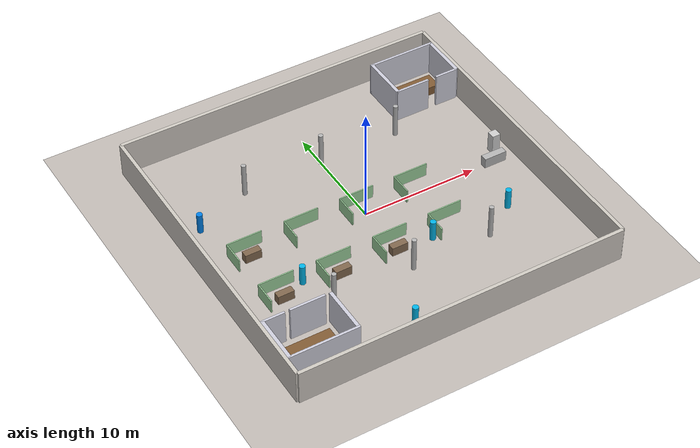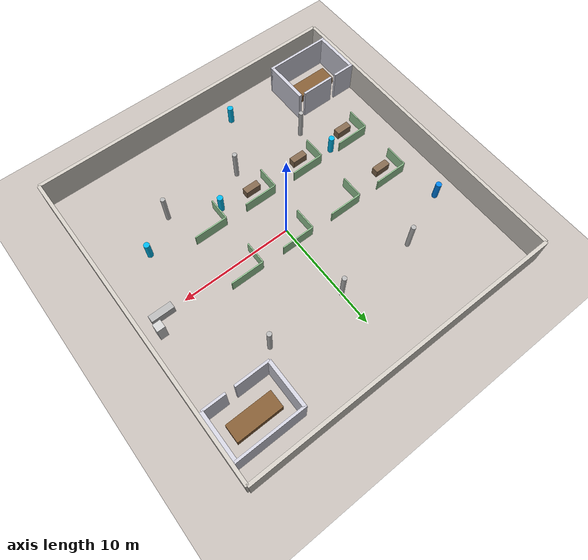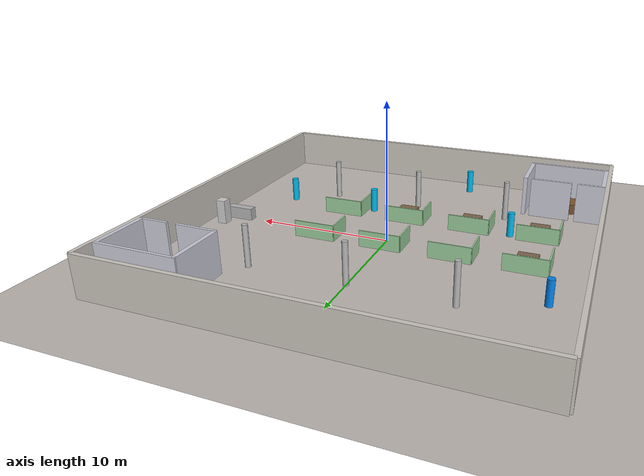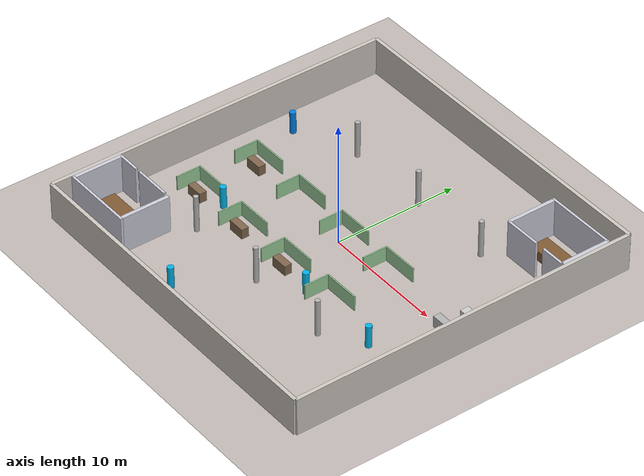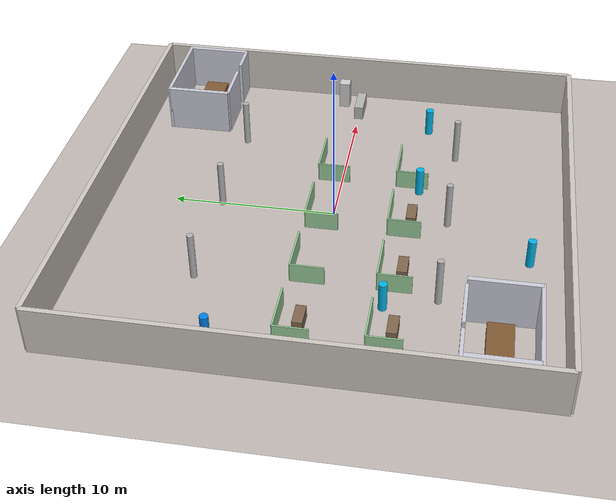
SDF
<?xml version="1.0" ?>
<sdf version="1.8">
  <world name="office">

    <!-- Earth reference frame for GPS/NavSat and Magnetometer sensors -->
    <spherical_coordinates>
      <surface_model>EARTH_WGS84</surface_model>
      <latitude_deg>51.5074</latitude_deg>
      <longitude_deg>-0.1278</longitude_deg>
      <elevation>0</elevation>
      <heading_deg>0</heading_deg>
    </spherical_coordinates>

    <plugin filename="gz-sim-physics-system"           name="gz::sim::systems::Physics"/>
    <plugin filename="gz-sim-user-commands-system"     name="gz::sim::systems::UserCommands"/>
    <plugin filename="gz-sim-scene-broadcaster-system" name="gz::sim::systems::SceneBroadcaster"/>
    <plugin filename="gz-sim-sensors-system"           name="gz::sim::systems::Sensors">
      <render_engine>ogre2</render_engine>
    </plugin>
    <plugin filename="gz-sim-imu-system"               name="gz::sim::systems::Imu"/>
    <plugin filename="gz-sim-navsat-system"           name="gz::sim::systems::NavSat"/>
    <plugin filename="gz-sim-magnetometer-system"     name="gz::sim::systems::Magnetometer"/>

    <light type="directional" name="sun">
      <cast_shadows>true</cast_shadows><pose>0 0 15 0 0 0</pose>
      <diffuse>1 0.98 0.95 1</diffuse><specular>0.2 0.2 0.2 1</specular>
      <attenuation><range>1000</range><constant>0.9</constant><linear>0.01</linear><quadratic>0.001</quadratic></attenuation>
      <direction>-0.3 0.1 -0.9</direction>
    </light>

    <model name="ground_plane"><static>true</static>
      <link name="link">
        <collision name="col"><geometry><plane><normal>0 0 1</normal><size>100 100</size></plane></geometry></collision>
        <visual name="vis">
          <geometry><plane><normal>0 0 1</normal><size>100 100</size></plane></geometry>
          <material><ambient>0.75 0.72 0.7 1</ambient><diffuse>0.75 0.72 0.7 1</diffuse></material>
        </visual>
      </link>
    </model>

    <!-- ── OUTER WALLS (28 m × 28 m, x=-14 to 14, y=-14 to 14) ───────── -->
    <model name="wall_n"><static>true</static><pose>0 14.15 1.5 0 0 0</pose>
      <link name="l"><collision name="c"><geometry><box><size>28.3 0.3 3</size></box></geometry><surface><friction><ode><mu>0.05</mu><mu2>0.05</mu2></ode></friction></surface></collision>
      <visual name="v"><geometry><box><size>28.3 0.3 3</size></box></geometry><material><ambient>0.8 0.78 0.75 1</ambient><diffuse>0.8 0.78 0.75 1</diffuse></material></visual></link></model>
    <model name="wall_s"><static>true</static><pose>0 -14.15 1.5 0 0 0</pose>
      <link name="l"><collision name="c"><geometry><box><size>28.3 0.3 3</size></box></geometry><surface><friction><ode><mu>0.05</mu><mu2>0.05</mu2></ode></friction></surface></collision>
      <visual name="v"><geometry><box><size>28.3 0.3 3</size></box></geometry><material><ambient>0.8 0.78 0.75 1</ambient><diffuse>0.8 0.78 0.75 1</diffuse></material></visual></link></model>
    <model name="wall_e"><static>true</static><pose>14.15 0 1.5 0 0 0</pose>
      <link name="l"><collision name="c"><geometry><box><size>0.3 28.3 3</size></box></geometry><surface><friction><ode><mu>0.05</mu><mu2>0.05</mu2></ode></friction></surface></collision>
      <visual name="v"><geometry><box><size>0.3 28.3 3</size></box></geometry><material><ambient>0.8 0.78 0.75 1</ambient><diffuse>0.8 0.78 0.75 1</diffuse></material></visual></link></model>
    <model name="wall_w"><static>true</static><pose>-14.15 0 1.5 0 0 0</pose>
      <link name="l"><collision name="c"><geometry><box><size>0.3 28.3 3</size></box></geometry><surface><friction><ode><mu>0.05</mu><mu2>0.05</mu2></ode></friction></surface></collision>
      <visual name="v"><geometry><box><size>0.3 28.3 3</size></box></geometry><material><ambient>0.8 0.78 0.75 1</ambient><diffuse>0.8 0.78 0.75 1</diffuse></material></visual></link></model>

    <!-- ── STRUCTURAL PILLARS (6 round pillars, 0.4 m dia, 3 m tall) ──── -->
    <model name="pillar_1"><static>true</static><pose>-7 7 1.5 0 0 0</pose>
      <link name="l"><collision name="c"><geometry><cylinder><radius>0.2</radius><length>3</length></cylinder></geometry><surface><friction><ode><mu>0.05</mu><mu2>0.05</mu2></ode></friction></surface></collision>
      <visual name="v"><geometry><cylinder><radius>0.2</radius><length>3</length></cylinder></geometry><material><ambient>0.7 0.7 0.7 1</ambient><diffuse>0.7 0.7 0.7 1</diffuse></material></visual></link></model>
    <model name="pillar_2"><static>true</static><pose>0 7 1.5 0 0 0</pose>
      <link name="l"><collision name="c"><geometry><cylinder><radius>0.2</radius><length>3</length></cylinder></geometry><surface><friction><ode><mu>0.05</mu><mu2>0.05</mu2></ode></friction></surface></collision>
      <visual name="v"><geometry><cylinder><radius>0.2</radius><length>3</length></cylinder></geometry><material><ambient>0.7 0.7 0.7 1</ambient><diffuse>0.7 0.7 0.7 1</diffuse></material></visual></link></model>
    <model name="pillar_3"><static>true</static><pose>7 7 1.5 0 0 0</pose>
      <link name="l"><collision name="c"><geometry><cylinder><radius>0.2</radius><length>3</length></cylinder></geometry><surface><friction><ode><mu>0.05</mu><mu2>0.05</mu2></ode></friction></surface></collision>
      <visual name="v"><geometry><cylinder><radius>0.2</radius><length>3</length></cylinder></geometry><material><ambient>0.7 0.7 0.7 1</ambient><diffuse>0.7 0.7 0.7 1</diffuse></material></visual></link></model>
    <model name="pillar_4"><static>true</static><pose>-7 -7 1.5 0 0 0</pose>
      <link name="l"><collision name="c"><geometry><cylinder><radius>0.2</radius><length>3</length></cylinder></geometry><surface><friction><ode><mu>0.05</mu><mu2>0.05</mu2></ode></friction></surface></collision>
      <visual name="v"><geometry><cylinder><radius>0.2</radius><length>3</length></cylinder></geometry><material><ambient>0.7 0.7 0.7 1</ambient><diffuse>0.7 0.7 0.7 1</diffuse></material></visual></link></model>
    <model name="pillar_5"><static>true</static><pose>0 -7 1.5 0 0 0</pose>
      <link name="l"><collision name="c"><geometry><cylinder><radius>0.2</radius><length>3</length></cylinder></geometry><surface><friction><ode><mu>0.05</mu><mu2>0.05</mu2></ode></friction></surface></collision>
      <visual name="v"><geometry><cylinder><radius>0.2</radius><length>3</length></cylinder></geometry><material><ambient>0.7 0.7 0.7 1</ambient><diffuse>0.7 0.7 0.7 1</diffuse></material></visual></link></model>
    <model name="pillar_6"><static>true</static><pose>7 -7 1.5 0 0 0</pose>
      <link name="l"><collision name="c"><geometry><cylinder><radius>0.2</radius><length>3</length></cylinder></geometry><surface><friction><ode><mu>0.05</mu><mu2>0.05</mu2></ode></friction></surface></collision>
      <visual name="v"><geometry><cylinder><radius>0.2</radius><length>3</length></cylinder></geometry><material><ambient>0.7 0.7 0.7 1</ambient><diffuse>0.7 0.7 0.7 1</diffuse></material></visual></link></model>

    <!-- ── CONFERENCE ROOM NORTH-EAST (6 m × 5 m) ─────────────────────── -->
    <model name="conf_ne_n"><static>true</static><pose>11 12.5 1.5 0 0 0</pose>
      <link name="l"><collision name="c"><geometry><box><size>6 0.2 3</size></box></geometry><surface><friction><ode><mu>0.05</mu><mu2>0.05</mu2></ode></friction></surface></collision>
      <visual name="v"><geometry><box><size>6 0.2 3</size></box></geometry><material><ambient>0.8 0.8 0.85 1</ambient><diffuse>0.8 0.8 0.85 1</diffuse></material></visual></link></model>
    <model name="conf_ne_s_w"><static>true</static><pose>8.15 10.5 1.5 0 0 0</pose>
      <link name="l"><collision name="c"><geometry><box><size>0.3 4 3</size></box></geometry><surface><friction><ode><mu>0.05</mu><mu2>0.05</mu2></ode></friction></surface></collision>
      <visual name="v"><geometry><box><size>0.3 4 3</size></box></geometry><material><ambient>0.8 0.8 0.85 1</ambient><diffuse>0.8 0.8 0.85 1</diffuse></material></visual></link></model>
    <model name="conf_ne_s_e"><static>true</static><pose>13.85 10.5 1.5 0 0 0</pose>
      <link name="l"><collision name="c"><geometry><box><size>0.3 4 3</size></box></geometry><surface><friction><ode><mu>0.05</mu><mu2>0.05</mu2></ode></friction></surface></collision>
      <visual name="v"><geometry><box><size>0.3 4 3</size></box></geometry><material><ambient>0.8 0.8 0.85 1</ambient><diffuse>0.8 0.8 0.85 1</diffuse></material></visual></link></model>
    <!-- South wall of conf room with door gap -->
    <model name="conf_ne_door_l"><static>true</static><pose>9.6 8.5 1.5 0 0 0</pose>
      <link name="l"><collision name="c"><geometry><box><size>3 0.2 3</size></box></geometry><surface><friction><ode><mu>0.05</mu><mu2>0.05</mu2></ode></friction></surface></collision>
      <visual name="v"><geometry><box><size>3 0.2 3</size></box></geometry><material><ambient>0.8 0.8 0.85 1</ambient><diffuse>0.8 0.8 0.85 1</diffuse></material></visual></link></model>
    <model name="conf_ne_door_r"><static>true</static><pose>12.85 8.5 1.5 0 0 0</pose>
      <link name="l"><collision name="c"><geometry><box><size>2 0.2 3</size></box></geometry><surface><friction><ode><mu>0.05</mu><mu2>0.05</mu2></ode></friction></surface></collision>
      <visual name="v"><geometry><box><size>2 0.2 3</size></box></geometry><material><ambient>0.8 0.8 0.85 1</ambient><diffuse>0.8 0.8 0.85 1</diffuse></material></visual></link></model>
    <!-- Conference table -->
    <model name="conf_ne_table"><static>true</static><pose>11 10.5 0.4 0 0 0</pose>
      <link name="l"><collision name="c"><geometry><box><size>4 1.5 0.8</size></box></geometry><surface><friction><ode><mu>0.05</mu><mu2>0.05</mu2></ode></friction></surface></collision>
      <visual name="v"><geometry><box><size>4 1.5 0.8</size></box></geometry><material><ambient>0.5 0.35 0.2 1</ambient><diffuse>0.5 0.35 0.2 1</diffuse></material></visual></link></model>

    <!-- ── CONFERENCE ROOM SOUTH-WEST (6 m × 5 m) ─────────────────────── -->
    <model name="conf_sw_s"><static>true</static><pose>-11 -12.5 1.5 0 0 0</pose>
      <link name="l"><collision name="c"><geometry><box><size>6 0.2 3</size></box></geometry><surface><friction><ode><mu>0.05</mu><mu2>0.05</mu2></ode></friction></surface></collision>
      <visual name="v"><geometry><box><size>6 0.2 3</size></box></geometry><material><ambient>0.8 0.8 0.85 1</ambient><diffuse>0.8 0.8 0.85 1</diffuse></material></visual></link></model>
    <model name="conf_sw_w"><static>true</static><pose>-13.85 -10.5 1.5 0 0 0</pose>
      <link name="l"><collision name="c"><geometry><box><size>0.3 4 3</size></box></geometry><surface><friction><ode><mu>0.05</mu><mu2>0.05</mu2></ode></friction></surface></collision>
      <visual name="v"><geometry><box><size>0.3 4 3</size></box></geometry><material><ambient>0.8 0.8 0.85 1</ambient><diffuse>0.8 0.8 0.85 1</diffuse></material></visual></link></model>
    <model name="conf_sw_e"><static>true</static><pose>-8.15 -10.5 1.5 0 0 0</pose>
      <link name="l"><collision name="c"><geometry><box><size>0.3 4 3</size></box></geometry><surface><friction><ode><mu>0.05</mu><mu2>0.05</mu2></ode></friction></surface></collision>
      <visual name="v"><geometry><box><size>0.3 4 3</size></box></geometry><material><ambient>0.8 0.8 0.85 1</ambient><diffuse>0.8 0.8 0.85 1</diffuse></material></visual></link></model>
    <model name="conf_sw_door_l"><static>true</static><pose>-13 -8.5 1.5 0 0 0</pose>
      <link name="l"><collision name="c"><geometry><box><size>2 0.2 3</size></box></geometry><surface><friction><ode><mu>0.05</mu><mu2>0.05</mu2></ode></friction></surface></collision>
      <visual name="v"><geometry><box><size>2 0.2 3</size></box></geometry><material><ambient>0.8 0.8 0.85 1</ambient><diffuse>0.8 0.8 0.85 1</diffuse></material></visual></link></model>
    <model name="conf_sw_door_r"><static>true</static><pose>-10.1 -8.5 1.5 0 0 0</pose>
      <link name="l"><collision name="c"><geometry><box><size>3 0.2 3</size></box></geometry><surface><friction><ode><mu>0.05</mu><mu2>0.05</mu2></ode></friction></surface></collision>
      <visual name="v"><geometry><box><size>3 0.2 3</size></box></geometry><material><ambient>0.8 0.8 0.85 1</ambient><diffuse>0.8 0.8 0.85 1</diffuse></material></visual></link></model>
    <model name="conf_sw_table"><static>true</static><pose>-11 -10.5 0.4 0 0 0</pose>
      <link name="l"><collision name="c"><geometry><box><size>4 1.5 0.8</size></box></geometry><surface><friction><ode><mu>0.05</mu><mu2>0.05</mu2></ode></friction></surface></collision>
      <visual name="v"><geometry><box><size>4 1.5 0.8</size></box></geometry><material><ambient>0.5 0.35 0.2 1</ambient><diffuse>0.5 0.35 0.2 1</diffuse></material></visual></link></model>

    <!-- Row 1 (y=-5 to -2): 4 clusters -->
    <model name="cub_1_1"><static>true</static><pose>-10 -3.5 0.6 0 0 0</pose>
      <link name="l"><collision name="c"><geometry><box><size>3 0.1 1.2</size></box></geometry><surface><friction><ode><mu>0.05</mu><mu2>0.05</mu2></ode></friction></surface></collision>
      <visual name="v"><geometry><box><size>3 0.1 1.2</size></box></geometry><material><ambient>0.6 0.8 0.6 1</ambient><diffuse>0.6 0.8 0.6 1</diffuse></material></visual></link></model>
    <model name="cub_1_2"><static>true</static><pose>-11.5 -4.5 0.6 0 0 0</pose>
      <link name="l"><collision name="c"><geometry><box><size>0.1 2 1.2</size></box></geometry><surface><friction><ode><mu>0.05</mu><mu2>0.05</mu2></ode></friction></surface></collision>
      <visual name="v"><geometry><box><size>0.1 2 1.2</size></box></geometry><material><ambient>0.6 0.8 0.6 1</ambient><diffuse>0.6 0.8 0.6 1</diffuse></material></visual></link></model>
    <model name="cub_2_1"><static>true</static><pose>-5 -3.5 0.6 0 0 0</pose>
      <link name="l"><collision name="c"><geometry><box><size>3 0.1 1.2</size></box></geometry><surface><friction><ode><mu>0.05</mu><mu2>0.05</mu2></ode></friction></surface></collision>
      <visual name="v"><geometry><box><size>3 0.1 1.2</size></box></geometry><material><ambient>0.6 0.8 0.6 1</ambient><diffuse>0.6 0.8 0.6 1</diffuse></material></visual></link></model>
    <model name="cub_2_2"><static>true</static><pose>-6.5 -4.5 0.6 0 0 0</pose>
      <link name="l"><collision name="c"><geometry><box><size>0.1 2 1.2</size></box></geometry><surface><friction><ode><mu>0.05</mu><mu2>0.05</mu2></ode></friction></surface></collision>
      <visual name="v"><geometry><box><size>0.1 2 1.2</size></box></geometry><material><ambient>0.6 0.8 0.6 1</ambient><diffuse>0.6 0.8 0.6 1</diffuse></material></visual></link></model>
    <model name="cub_3_1"><static>true</static><pose>0 -3.5 0.6 0 0 0</pose>
      <link name="l"><collision name="c"><geometry><box><size>3 0.1 1.2</size></box></geometry><surface><friction><ode><mu>0.05</mu><mu2>0.05</mu2></ode></friction></surface></collision>
      <visual name="v"><geometry><box><size>3 0.1 1.2</size></box></geometry><material><ambient>0.6 0.8 0.6 1</ambient><diffuse>0.6 0.8 0.6 1</diffuse></material></visual></link></model>
    <model name="cub_3_2"><static>true</static><pose>-1.5 -4.5 0.6 0 0 0</pose>
      <link name="l"><collision name="c"><geometry><box><size>0.1 2 1.2</size></box></geometry><surface><friction><ode><mu>0.05</mu><mu2>0.05</mu2></ode></friction></surface></collision>
      <visual name="v"><geometry><box><size>0.1 2 1.2</size></box></geometry><material><ambient>0.6 0.8 0.6 1</ambient><diffuse>0.6 0.8 0.6 1</diffuse></material></visual></link></model>
    <model name="cub_4_1"><static>true</static><pose>5 -3.5 0.6 0 0 0</pose>
      <link name="l"><collision name="c"><geometry><box><size>3 0.1 1.2</size></box></geometry><surface><friction><ode><mu>0.05</mu><mu2>0.05</mu2></ode></friction></surface></collision>
      <visual name="v"><geometry><box><size>3 0.1 1.2</size></box></geometry><material><ambient>0.6 0.8 0.6 1</ambient><diffuse>0.6 0.8 0.6 1</diffuse></material></visual></link></model>
    <model name="cub_4_2"><static>true</static><pose>3.5 -4.5 0.6 0 0 0</pose>
      <link name="l"><collision name="c"><geometry><box><size>0.1 2 1.2</size></box></geometry><surface><friction><ode><mu>0.05</mu><mu2>0.05</mu2></ode></friction></surface></collision>
      <visual name="v"><geometry><box><size>0.1 2 1.2</size></box></geometry><material><ambient>0.6 0.8 0.6 1</ambient><diffuse>0.6 0.8 0.6 1</diffuse></material></visual></link></model>

    <!-- Row 2 (y=0 to 3): 4 clusters -->
    <model name="cub_5_1"><static>true</static><pose>-10 1.5 0.6 0 0 0</pose>
      <link name="l"><collision name="c"><geometry><box><size>3 0.1 1.2</size></box></geometry><surface><friction><ode><mu>0.05</mu><mu2>0.05</mu2></ode></friction></surface></collision>
      <visual name="v"><geometry><box><size>3 0.1 1.2</size></box></geometry><material><ambient>0.6 0.8 0.6 1</ambient><diffuse>0.6 0.8 0.6 1</diffuse></material></visual></link></model>
    <model name="cub_5_2"><static>true</static><pose>-11.5 0.5 0.6 0 0 0</pose>
      <link name="l"><collision name="c"><geometry><box><size>0.1 2 1.2</size></box></geometry><surface><friction><ode><mu>0.05</mu><mu2>0.05</mu2></ode></friction></surface></collision>
      <visual name="v"><geometry><box><size>0.1 2 1.2</size></box></geometry><material><ambient>0.6 0.8 0.6 1</ambient><diffuse>0.6 0.8 0.6 1</diffuse></material></visual></link></model>
    <model name="cub_6_1"><static>true</static><pose>-5 1.5 0.6 0 0 0</pose>
      <link name="l"><collision name="c"><geometry><box><size>3 0.1 1.2</size></box></geometry><surface><friction><ode><mu>0.05</mu><mu2>0.05</mu2></ode></friction></surface></collision>
      <visual name="v"><geometry><box><size>3 0.1 1.2</size></box></geometry><material><ambient>0.6 0.8 0.6 1</ambient><diffuse>0.6 0.8 0.6 1</diffuse></material></visual></link></model>
    <model name="cub_6_2"><static>true</static><pose>-6.5 0.5 0.6 0 0 0</pose>
      <link name="l"><collision name="c"><geometry><box><size>0.1 2 1.2</size></box></geometry><surface><friction><ode><mu>0.05</mu><mu2>0.05</mu2></ode></friction></surface></collision>
      <visual name="v"><geometry><box><size>0.1 2 1.2</size></box></geometry><material><ambient>0.6 0.8 0.6 1</ambient><diffuse>0.6 0.8 0.6 1</diffuse></material></visual></link></model>
    <model name="cub_7_1"><static>true</static><pose>0 1.5 0.6 0 0 0</pose>
      <link name="l"><collision name="c"><geometry><box><size>3 0.1 1.2</size></box></geometry><surface><friction><ode><mu>0.05</mu><mu2>0.05</mu2></ode></friction></surface></collision>
      <visual name="v"><geometry><box><size>3 0.1 1.2</size></box></geometry><material><ambient>0.6 0.8 0.6 1</ambient><diffuse>0.6 0.8 0.6 1</diffuse></material></visual></link></model>
    <model name="cub_7_2"><static>true</static><pose>-1.5 0.5 0.6 0 0 0</pose>
      <link name="l"><collision name="c"><geometry><box><size>0.1 2 1.2</size></box></geometry><surface><friction><ode><mu>0.05</mu><mu2>0.05</mu2></ode></friction></surface></collision>
      <visual name="v"><geometry><box><size>0.1 2 1.2</size></box></geometry><material><ambient>0.6 0.8 0.6 1</ambient><diffuse>0.6 0.8 0.6 1</diffuse></material></visual></link></model>
    <model name="cub_8_1"><static>true</static><pose>5 1.5 0.6 0 0 0</pose>
      <link name="l"><collision name="c"><geometry><box><size>3 0.1 1.2</size></box></geometry><surface><friction><ode><mu>0.05</mu><mu2>0.05</mu2></ode></friction></surface></collision>
      <visual name="v"><geometry><box><size>3 0.1 1.2</size></box></geometry><material><ambient>0.6 0.8 0.6 1</ambient><diffuse>0.6 0.8 0.6 1</diffuse></material></visual></link></model>
    <model name="cub_8_2"><static>true</static><pose>3.5 0.5 0.6 0 0 0</pose>
      <link name="l"><collision name="c"><geometry><box><size>0.1 2 1.2</size></box></geometry><surface><friction><ode><mu>0.05</mu><mu2>0.05</mu2></ode></friction></surface></collision>
      <visual name="v"><geometry><box><size>0.1 2 1.2</size></box></geometry><material><ambient>0.6 0.8 0.6 1</ambient><diffuse>0.6 0.8 0.6 1</diffuse></material></visual></link></model>

    <!-- Desks (flat boxes on the floor) -->
    <model name="desk1"><static>true</static><pose>-10 -4.8 0.4 0 0 0</pose>
      <link name="l"><collision name="c"><geometry><box><size>1.4 0.6 0.8</size></box></geometry><surface><friction><ode><mu>0.05</mu><mu2>0.05</mu2></ode></friction></surface></collision>
      <visual name="v"><geometry><box><size>1.4 0.6 0.8</size></box></geometry><material><ambient>0.5 0.4 0.3 1</ambient><diffuse>0.5 0.4 0.3 1</diffuse></material></visual></link></model>
    <model name="desk2"><static>true</static><pose>-5 -4.8 0.4 0 0 0</pose>
      <link name="l"><collision name="c"><geometry><box><size>1.4 0.6 0.8</size></box></geometry><surface><friction><ode><mu>0.05</mu><mu2>0.05</mu2></ode></friction></surface></collision>
      <visual name="v"><geometry><box><size>1.4 0.6 0.8</size></box></geometry><material><ambient>0.5 0.4 0.3 1</ambient><diffuse>0.5 0.4 0.3 1</diffuse></material></visual></link></model>
    <model name="desk3"><static>true</static><pose>0 -4.8 0.4 0 0 0</pose>
      <link name="l"><collision name="c"><geometry><box><size>1.4 0.6 0.8</size></box></geometry><surface><friction><ode><mu>0.05</mu><mu2>0.05</mu2></ode></friction></surface></collision>
      <visual name="v"><geometry><box><size>1.4 0.6 0.8</size></box></geometry><material><ambient>0.5 0.4 0.3 1</ambient><diffuse>0.5 0.4 0.3 1</diffuse></material></visual></link></model>
    <model name="desk4"><static>true</static><pose>-10 0.3 0.4 0 0 0</pose>
      <link name="l"><collision name="c"><geometry><box><size>1.4 0.6 0.8</size></box></geometry><surface><friction><ode><mu>0.05</mu><mu2>0.05</mu2></ode></friction></surface></collision>
      <visual name="v"><geometry><box><size>1.4 0.6 0.8</size></box></geometry><material><ambient>0.5 0.4 0.3 1</ambient><diffuse>0.5 0.4 0.3 1</diffuse></material></visual></link></model>

    <!-- Kitchen / break area obstacle cluster -->
    <model name="kitchen_counter"><static>true</static><pose>12 0 0.45 0 0 0</pose>
      <link name="l"><collision name="c"><geometry><box><size>2 0.6 0.9</size></box></geometry><surface><friction><ode><mu>0.05</mu><mu2>0.05</mu2></ode></friction></surface></collision>
      <visual name="v"><geometry><box><size>2 0.6 0.9</size></box></geometry><material><ambient>0.7 0.7 0.7 1</ambient><diffuse>0.7 0.7 0.7 1</diffuse></material></visual></link></model>
    <model name="fridge"><static>true</static><pose>12.8 1.2 0.9 0 0 0</pose>
      <link name="l"><collision name="c"><geometry><box><size>0.7 0.7 1.8</size></box></geometry><surface><friction><ode><mu>0.05</mu><mu2>0.05</mu2></ode></friction></surface></collision>
      <visual name="v"><geometry><box><size>0.7 0.7 1.8</size></box></geometry><material><ambient>0.8 0.8 0.8 1</ambient><diffuse>0.8 0.8 0.8 1</diffuse></material></visual></link></model>

    <model name="person_1">
      <pose>-8 -4 0.9 0 0 0</pose>
      <link name="body">
        <inertial><mass>70</mass><inertia><ixx>5</ixx><ixy>0</ixy><ixz>0</ixz><iyy>5</iyy><iyz>0</iyz><izz>2</izz></inertia></inertial>
        <collision name="col"><geometry><cylinder><radius>0.25</radius><length>1.8</length></cylinder></geometry><surface><friction><ode><mu>0.05</mu><mu2>0.05</mu2></ode></friction></surface></collision>
        <visual name="vis"><geometry><cylinder><radius>0.25</radius><length>1.8</length></cylinder></geometry>
          <material><ambient>0.0 0.7 0.9 1</ambient><diffuse>0.0 0.7 0.9 1</diffuse></material></visual>
      </link>
      <plugin filename="gz-sim-trajectory-follower-system" name="gz::sim::systems::TrajectoryFollower">
        <link_name>body</link_name><loop>true</loop><force>150</force><torque>30</torque>
        <waypoints><waypoint>-8 -8</waypoint><waypoint>-8 2</waypoint><waypoint>-3 2</waypoint><waypoint>-3 -4</waypoint></waypoints>
      </plugin>
    </model>

    <model name="person_2">
      <pose>3 -5 0.9 0 0 0</pose>
      <link name="body">
        <inertial><mass>70</mass><inertia><ixx>5</ixx><ixy>0</ixy><ixz>0</ixz><iyy>5</iyy><iyz>0</iyz><izz>2</izz></inertia></inertial>
        <collision name="col"><geometry><cylinder><radius>0.25</radius><length>1.8</length></cylinder></geometry><surface><friction><ode><mu>0.05</mu><mu2>0.05</mu2></ode></friction></surface></collision>
        <visual name="vis"><geometry><cylinder><radius>0.25</radius><length>1.8</length></cylinder></geometry>
          <material><ambient>0.0 0.7 0.9 1</ambient><diffuse>0.0 0.7 0.9 1</diffuse></material></visual>
      </link>
      <plugin filename="gz-sim-trajectory-follower-system" name="gz::sim::systems::TrajectoryFollower">
        <link_name>body</link_name><loop>true</loop><force>150</force><torque>30</torque>
        <waypoints><waypoint>3 -9</waypoint><waypoint>3 3</waypoint></waypoints>
      </plugin>
    </model>

    <model name="person_3">
      <pose>-12 5 0.9 0 0 0</pose>
      <link name="body">
        <inertial><mass>70</mass><inertia><ixx>5</ixx><ixy>0</ixy><ixz>0</ixz><iyy>5</iyy><iyz>0</iyz><izz>2</izz></inertia></inertial>
        <collision name="col"><geometry><cylinder><radius>0.25</radius><length>1.8</length></cylinder></geometry><surface><friction><ode><mu>0.05</mu><mu2>0.05</mu2></ode></friction></surface></collision>
        <visual name="vis"><geometry><cylinder><radius>0.25</radius><length>1.8</length></cylinder></geometry>
          <material><ambient>0.0 0.5 0.9 1</ambient><diffuse>0.0 0.5 0.9 1</diffuse></material></visual>
      </link>
      <plugin filename="gz-sim-trajectory-follower-system" name="gz::sim::systems::TrajectoryFollower">
        <link_name>body</link_name><loop>true</loop><force>150</force><torque>30</torque>
        <waypoints><waypoint>-12 9</waypoint><waypoint>5 5</waypoint><waypoint>5 13</waypoint></waypoints>
      </plugin>
    </model>

    <model name="person_4">
      <pose>10 -5 0.9 0 0 0</pose>
      <link name="body">
        <inertial><mass>70</mass><inertia><ixx>5</ixx><ixy>0</ixy><ixz>0</ixz><iyy>5</iyy><iyz>0</iyz><izz>2</izz></inertia></inertial>
        <collision name="col"><geometry><cylinder><radius>0.25</radius><length>1.8</length></cylinder></geometry><surface><friction><ode><mu>0.05</mu><mu2>0.05</mu2></ode></friction></surface></collision>
        <visual name="vis"><geometry><cylinder><radius>0.25</radius><length>1.8</length></cylinder></geometry>
          <material><ambient>0.0 0.7 0.9 1</ambient><diffuse>0.0 0.7 0.9 1</diffuse></material></visual>
      </link>
      <plugin filename="gz-sim-trajectory-follower-system" name="gz::sim::systems::TrajectoryFollower">
        <link_name>body</link_name><loop>true</loop><force>150</force><torque>30</torque>
        <waypoints><waypoint>10 -9</waypoint><waypoint>10 7</waypoint></waypoints>
      </plugin>
    </model>

    <model name="person_5">
      <pose>-3 -12 0.9 0 0 0</pose>
      <link name="body">
        <inertial><mass>70</mass><inertia><ixx>5</ixx><ixy>0</ixy><ixz>0</ixz><iyy>5</iyy><iyz>0</iyz><izz>2</izz></inertia></inertial>
        <collision name="col"><geometry><cylinder><radius>0.25</radius><length>1.8</length></cylinder></geometry><surface><friction><ode><mu>0.05</mu><mu2>0.05</mu2></ode></friction></surface></collision>
        <visual name="vis"><geometry><cylinder><radius>0.25</radius><length>1.8</length></cylinder></geometry>
          <material><ambient>0.0 0.7 0.9 1</ambient><diffuse>0.0 0.7 0.9 1</diffuse></material></visual>
      </link>
      <plugin filename="gz-sim-trajectory-follower-system" name="gz::sim::systems::TrajectoryFollower">
        <link_name>body</link_name><loop>true</loop><force>150</force><torque>30</torque>
        <waypoints><waypoint>-7 -12</waypoint><waypoint>8 -12</waypoint><waypoint>8 -8</waypoint><waypoint>-3 -8</waypoint></waypoints>
      </plugin>
    </model>

  </world>
</sdf>
